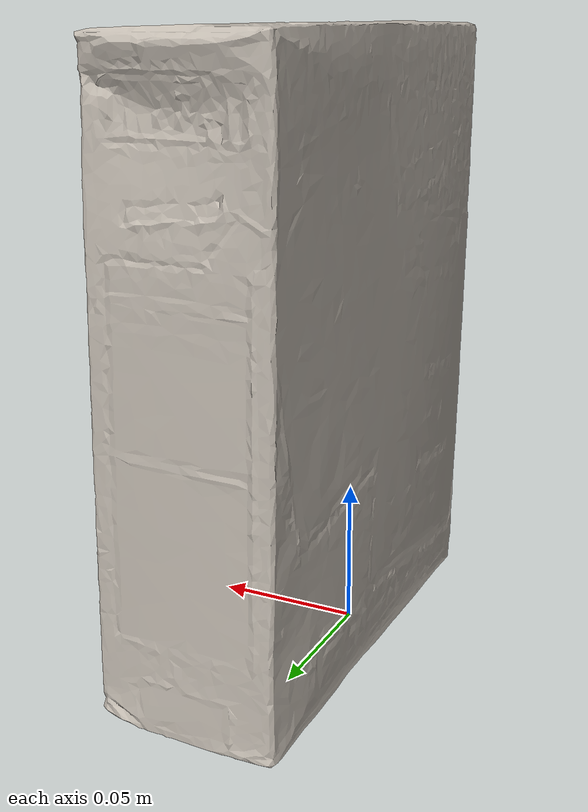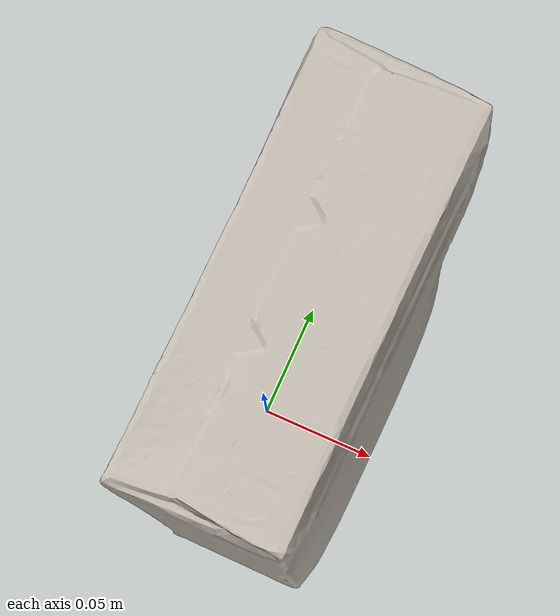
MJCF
<mujoco model="cracker_box">
  <compiler angle="radian"/>

  <asset>
    <texture name="cracker_box_tex" type="2d" file="cracker_box_texture.png"/>
    <material name="cracker_box_mat" texture="cracker_box_tex" specular="0.5" shininess="0.5"/>
    <mesh name="cracker_box_visual" file="cracker_box_visual.obj"/>
  </asset>

  <worldbody>
    <body name="cracker_box" pos="0 0 0.104">
      <freejoint name="cracker_box_joint"/>

      <!-- Collision geometry - box -->
      <geom name="cracker_box_collision"
            type="box"
            size="0.031 0.081 0.104"
            mass="0.4"
            friction="0.7 0.005 0.0001"
            contype="1"
            conaffinity="1"
            rgba="0 0 0 0"/>

      <!-- Visual mesh -->
      <geom name="cracker_box_visual"
            type="mesh"
            mesh="cracker_box_visual"
            material="cracker_box_mat"
            contype="0"
            conaffinity="0"
            pos="0.0147 0.014 -0.001"/>
    </body>
  </worldbody>
</mujoco>
